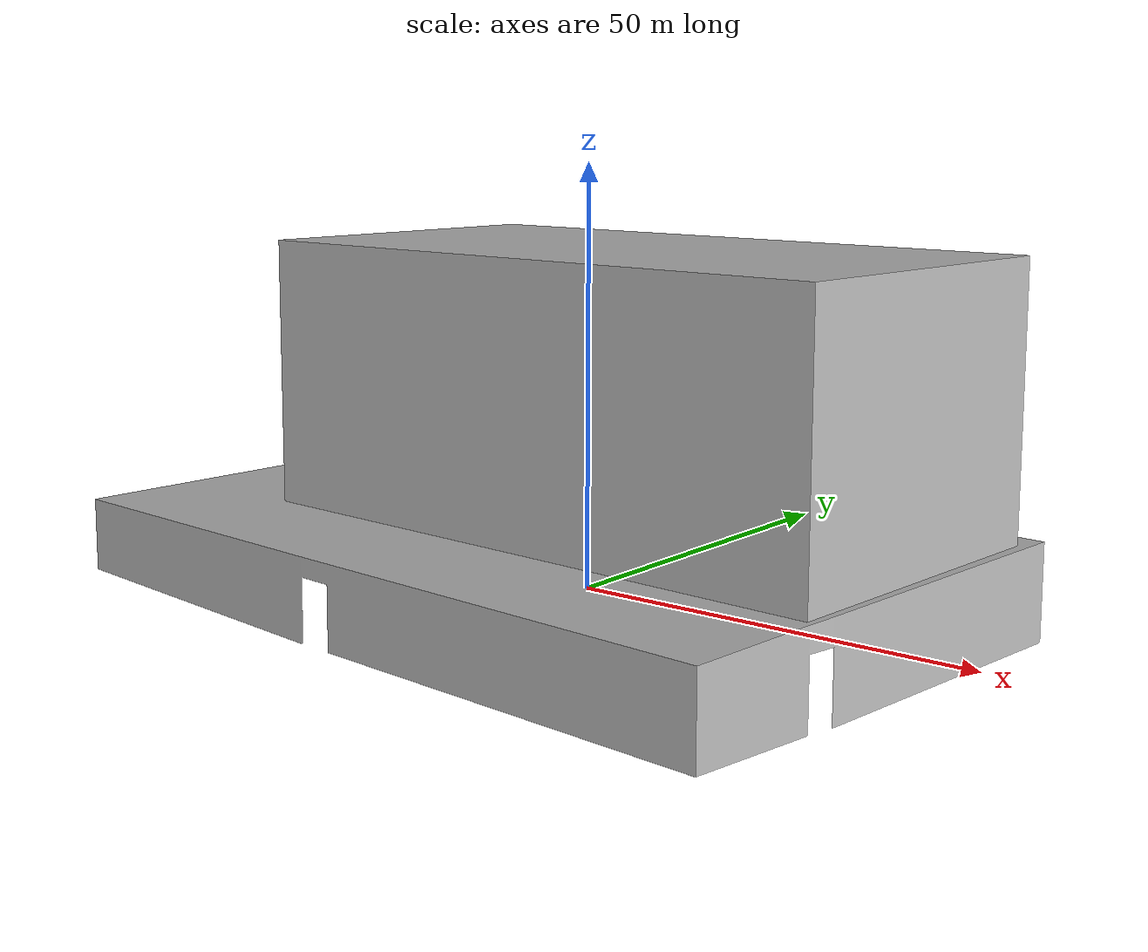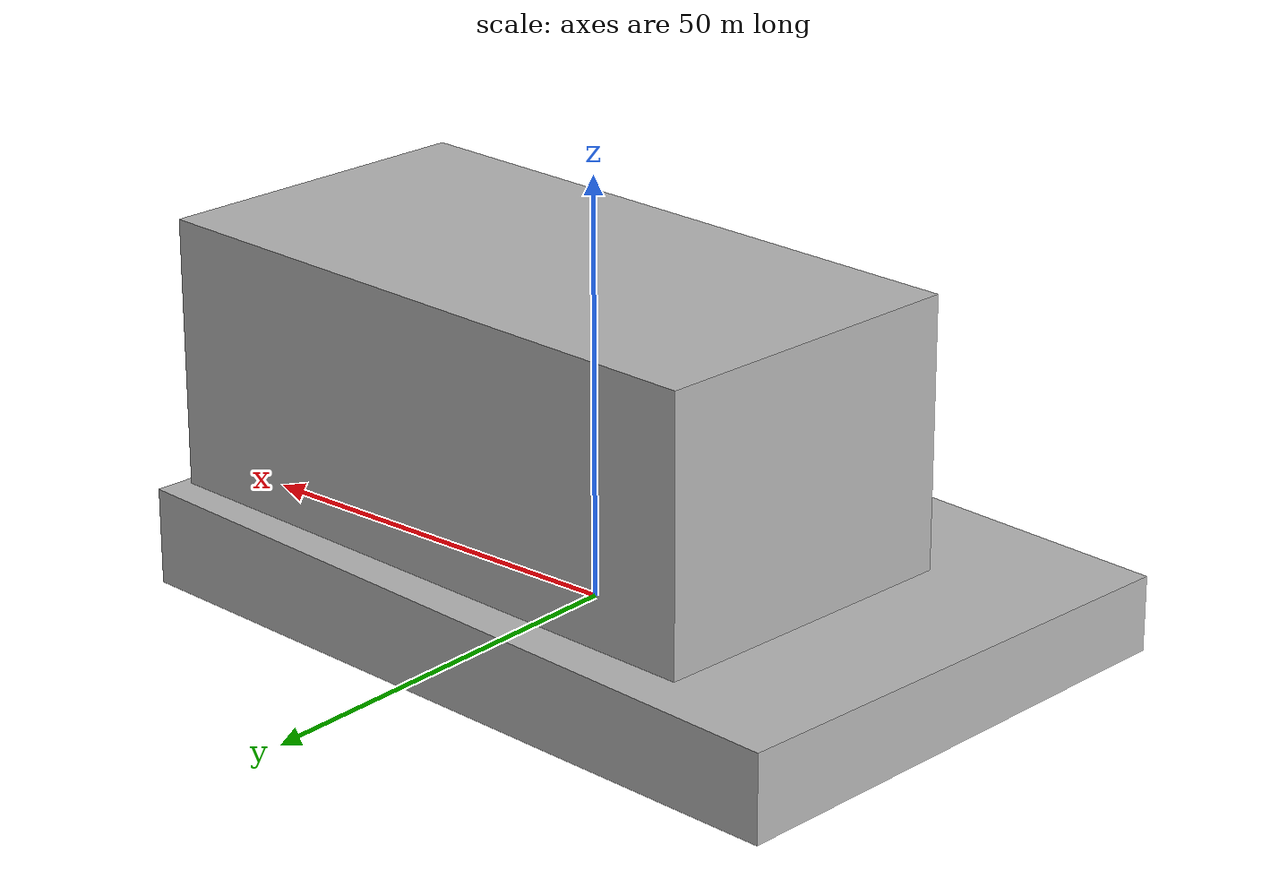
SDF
<?xml version="1.0" ?>
<sdf version="1.6">
  <model name="cityhall">
    <static>true</static>
    <link name="link">
      <collision name="collision">
        <geometry>
          <mesh>
            <uri>model://cityhall/meshes/cityhall.dae</uri>
            <scale>0.8052 0.8052 0.8052 </scale>
          </mesh>
        </geometry>
      </collision>
      <visual name="visual">
        <geometry>
          <mesh>
            <uri>model://cityhall/meshes/cityhall.dae</uri>
            <scale>0.8052 0.8052 0.8052 </scale>
          </mesh>
        </geometry>
      </visual>
    </link>
  </model>
</sdf>
